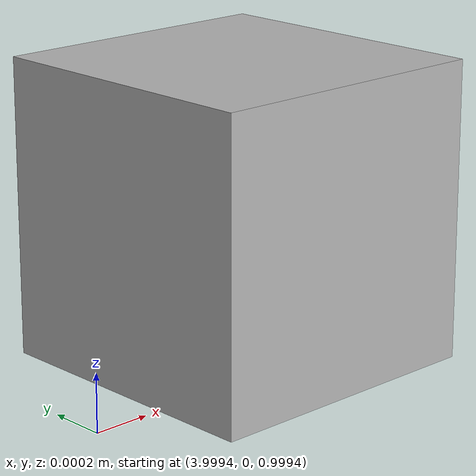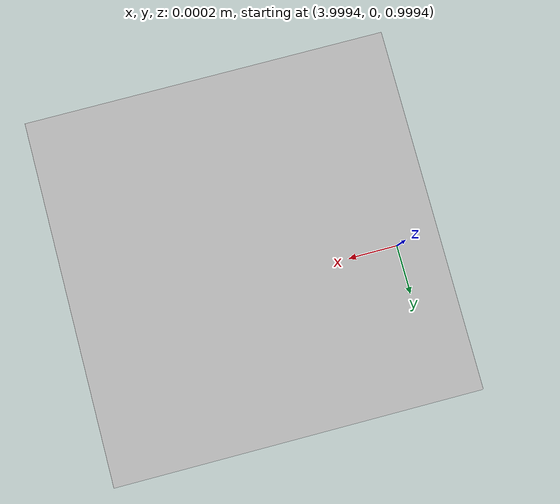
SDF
<?xml version="1.0"?>
<sdf version='1.7'>
  <model name="camera">
      <pose>4 0 1.0 0 0.0 3.14</pose>
      <link name="link">
        <pose>0.0 0.0 0.0 0 0 0</pose>
        <inertial>
          <mass>1e-5</mass>
          <inertia>
            <ixx>1e-6</ixx>
            <iyy>1e-6</iyy>
            <izz>1e-6</izz>
          </inertia>
        </inertial>
        <collision name="collision">
          <geometry>
            <box>
              <size>0.001 0.001 0.001</size>
            </box>
          </geometry>
        </collision>
        <visual name="visual">
          <geometry>
            <box>
              <size>0.001 0.001 0.001</size>
            </box>
          </geometry>
        </visual>
        <sensor name="camera" type="camera">
          <camera>
            <horizontal_fov>2.0</horizontal_fov>
            <image>
              <width>320</width>
              <height>180</height>
            </image>
            <clip>
              <near>0.1</near>
              <far>200</far>
            </clip>
          </camera>
          <always_on>1</always_on>
          <update_rate>15</update_rate>
          <visualize>true</visualize>
          <topic>camera/image_raw</topic>
        </sensor>
      </link>
    </model>
</sdf>
